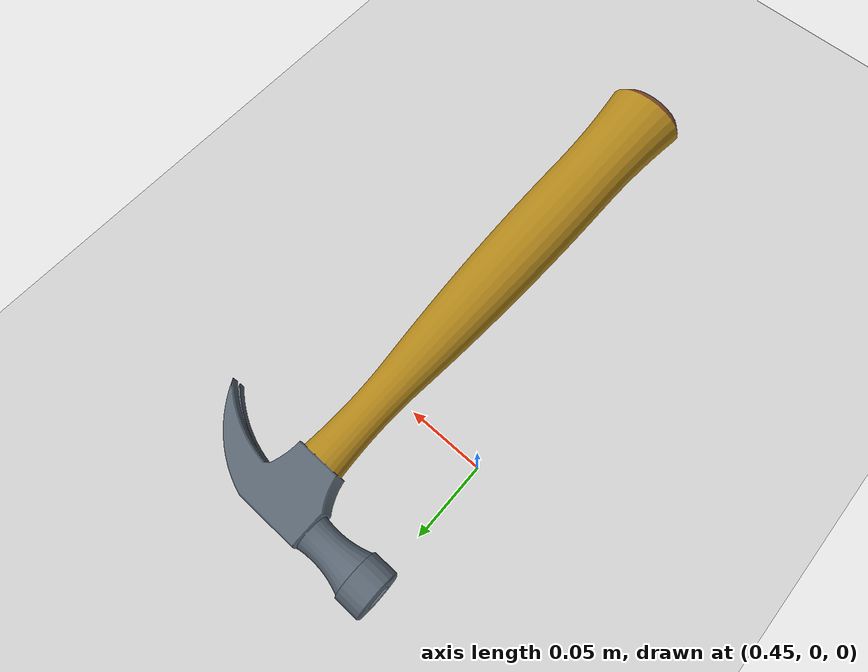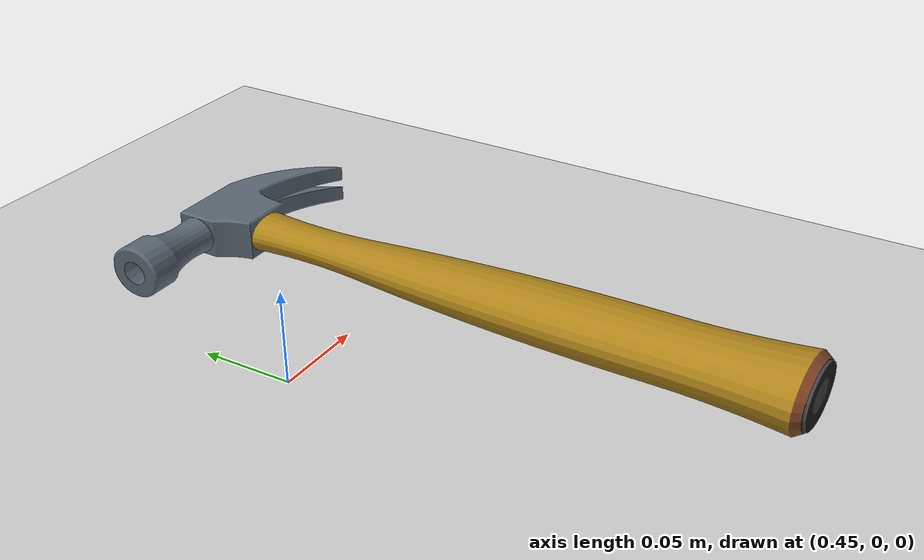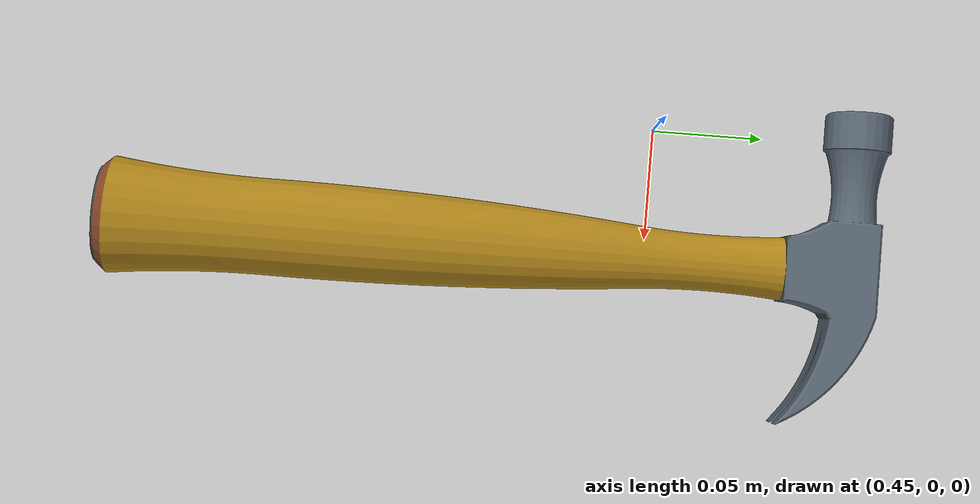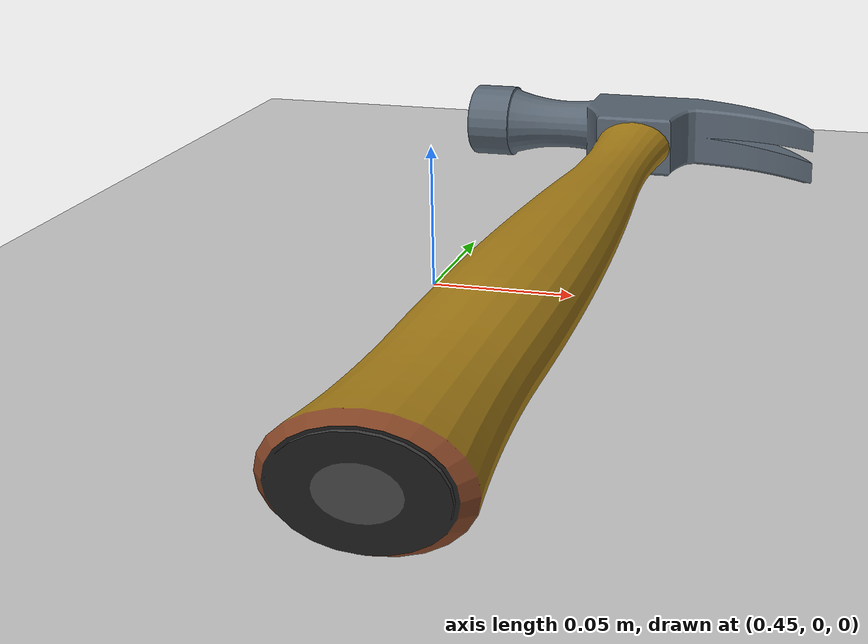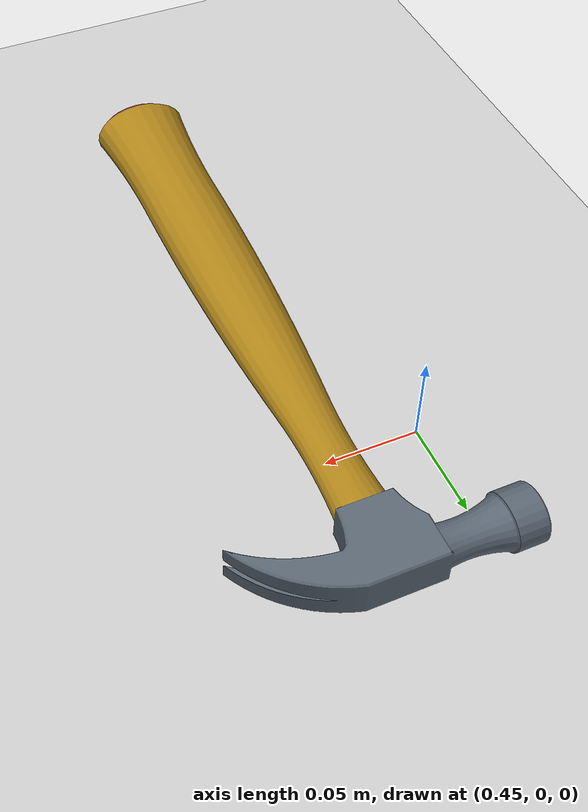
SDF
<?xml version="1.0"?>
<sdf version="1.5">
  <world name="default">
    <include>
      <uri>model://ground_plane</uri>
    </include>
    <include>
      <uri>model://sun</uri>
    </include>
    <model name="hammer">
      <pose>0 0 0 0 0 0</pose>
      <static>0</static>
      <allow_auto_disable>1</allow_auto_disable>
      <link name="hammer">
        <inertial>
          <mass>1</mass>
          <inertia>
            <ixx>0.145833</ixx>
            <ixy>0</ixy>
            <ixz>0</ixz>
            <iyy>0.125</iyy>
            <iyz>0</iyz>
            <izz>0.145833</izz>
          </inertia>
          <pose frame=''>0 0 0 0 -0 0</pose>
        </inertial>
        <pose frame=''>0 0 0.02 0 -0 0</pose>
        <gravity>1</gravity>
        <self_collide>0</self_collide>
        <kinematic>0</kinematic>
        <enable_wind>0</enable_wind>
        <visual name="visual">
          <pose>0.5 0 0.02 0 0 0</pose>
          <geometry>
            <mesh><uri>model://hammer/meshes/hammer.dae</uri></mesh>
          </geometry>
        </visual>
        <collision name="collision">
          <pose>0.5 0 0.02 0 0 0</pose>
          <geometry>
            <mesh><uri>model://hammer/meshes/hammer.dae</uri></mesh>
          </geometry>
        </collision>
      </link>
    </model>
  </world>
</sdf>
